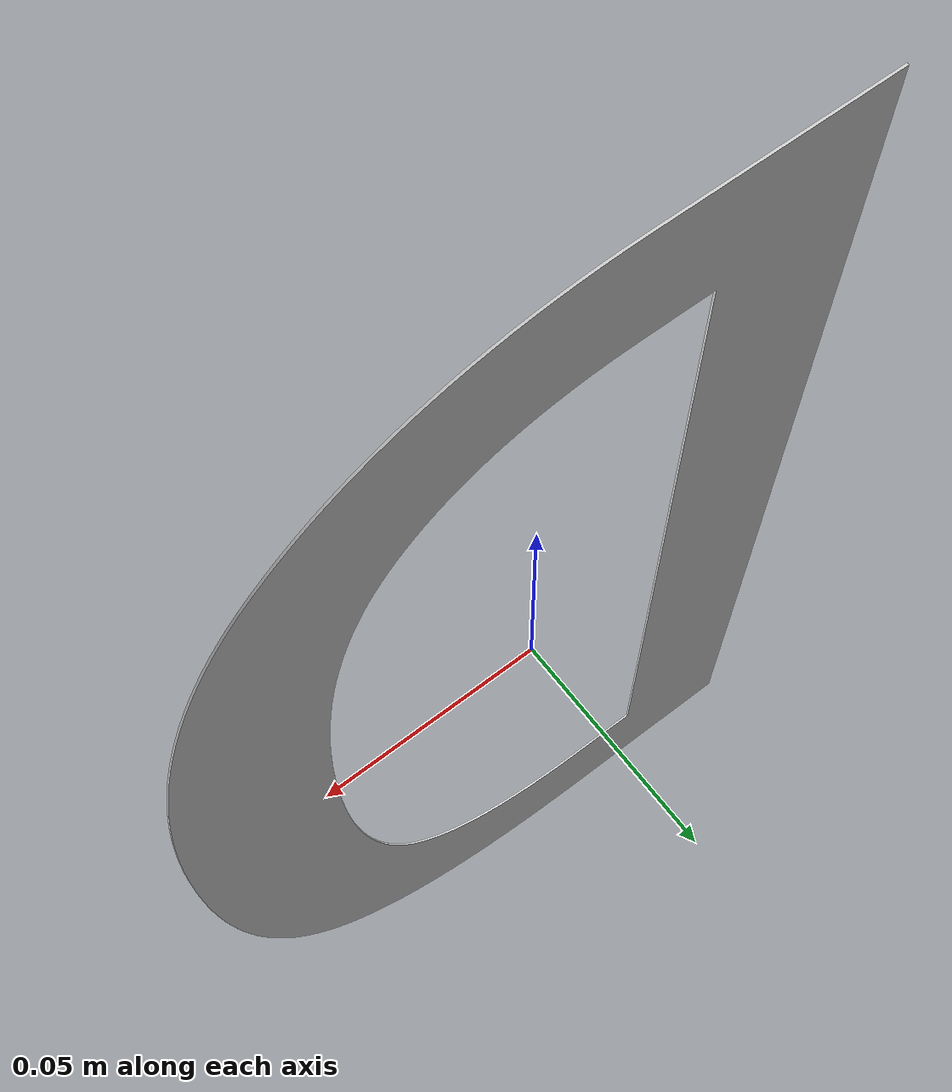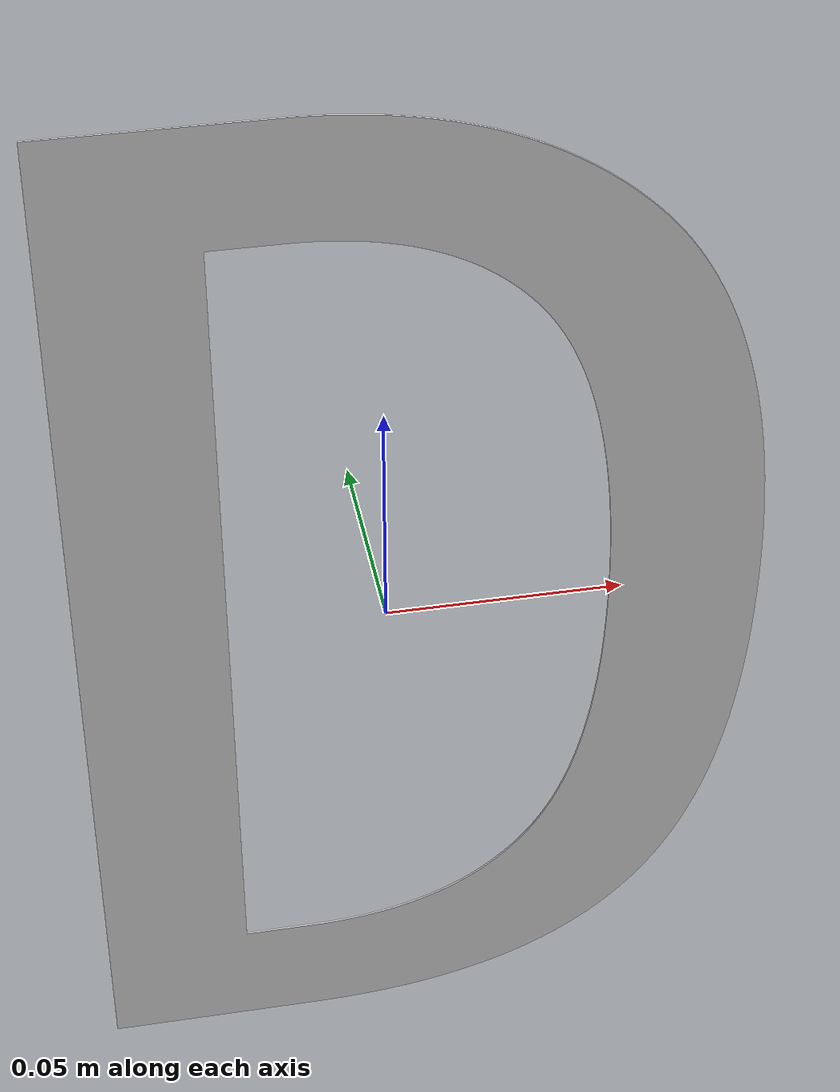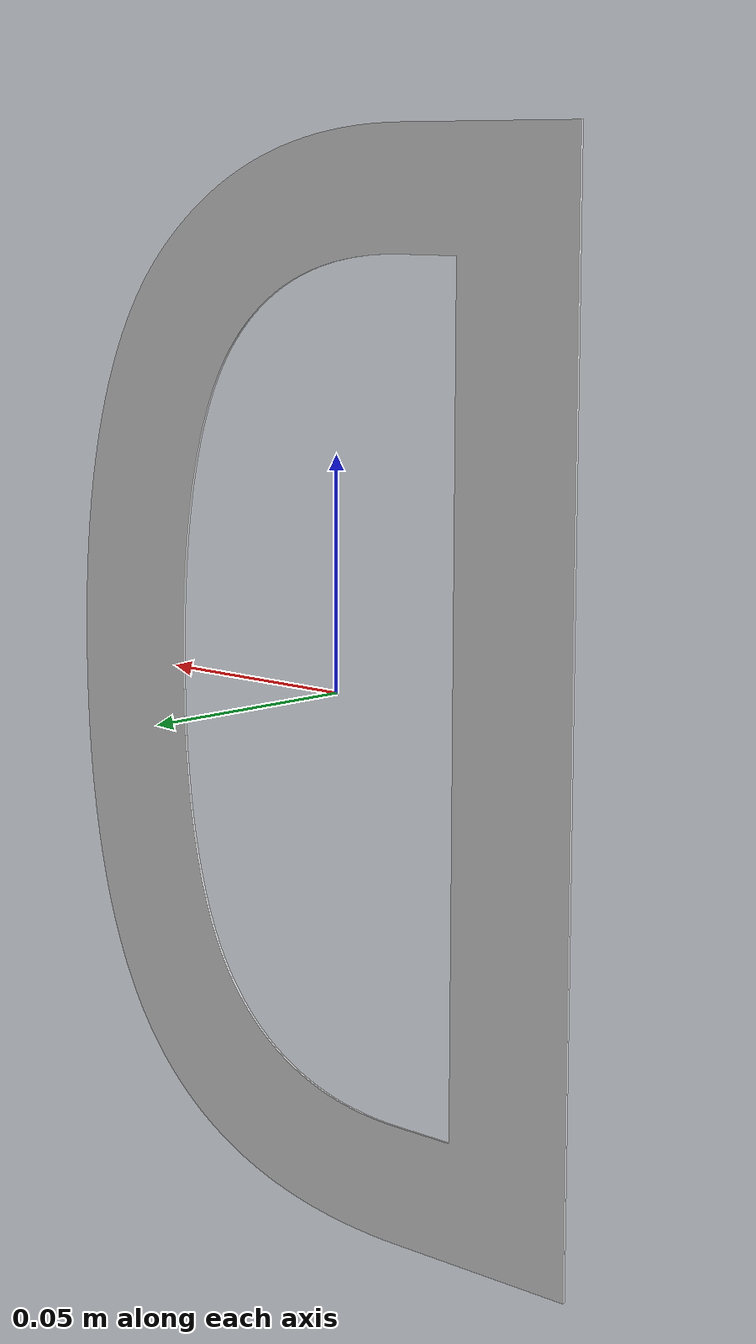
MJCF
<mujoco model="scene_D_edit">
  <compiler angle="degree" meshdir="meshes" texturedir="textures"/>
  <option gravity="0 0 -9.81"/>
  <default>
    <joint armature="0.01" damping="0.5"/>
    <default class="visual">
      <geom contype="0" conaffinity="0" group="2"/>
    </default>
    <default class="collision">
      <geom rgba="0.9 0.9 0.0 0.2" group="3"/>
    </default>
  </default>
  <asset>
    <material name="M_mat0_004" rgba="0.8471 0.8471 0.8471 1.0000"/>
    <mesh name="ImagetostlMesh0003" file="ImagetostlMesh0003.obj" inertia="shell"/>
  </asset>
  <worldbody>
    <body name="imagetostl_mesh_0_003" pos="0.000000 0.000000 0.000000">
      <geom type="mesh" mesh="ImagetostlMesh0003" class="visual" material="M_mat0_004"/>
      <geom name="imagetostl_mesh_0003_aabb" type="box" pos="0.0078 0.0000 0.0007" size="0.0723 0.0050 0.1166" class="collision"/>
    </body>
  </worldbody>
</mujoco>
